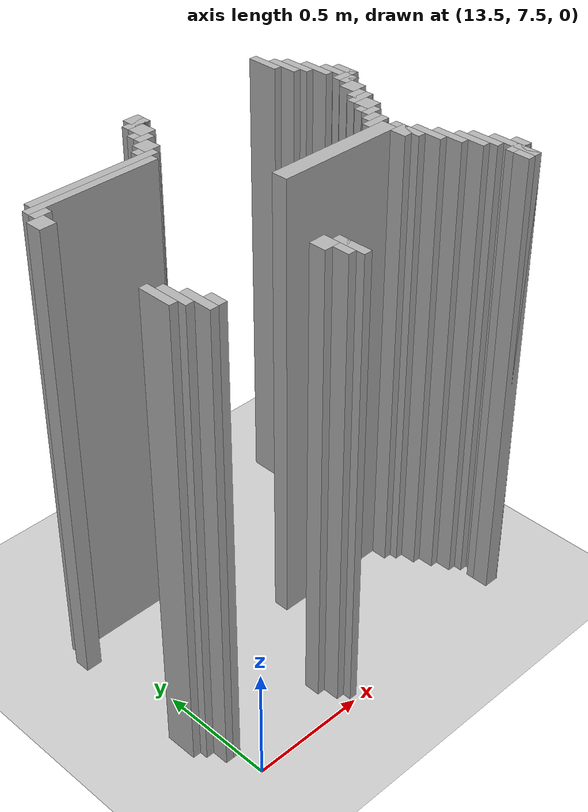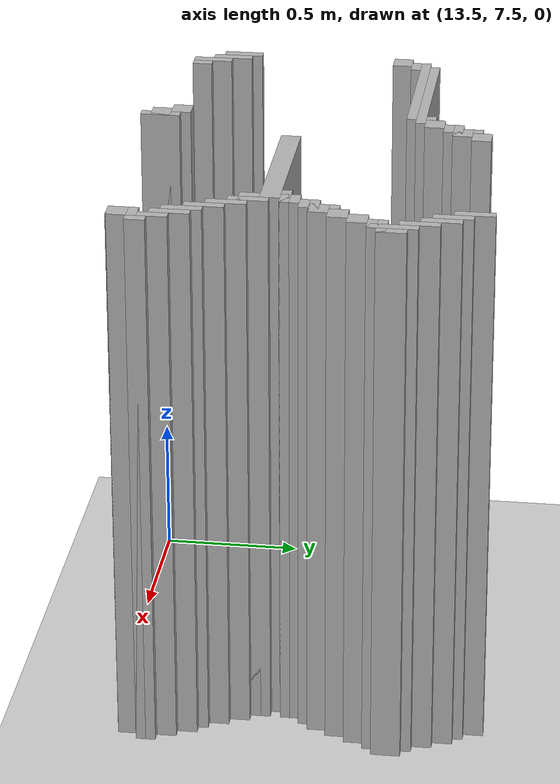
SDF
<sdf version="1.6">
 <world name="slam_world">
  <model name="ground_plane">
   <static>true</static>
   <link name="link">
    <collision name="collision">
     <geometry><plane><normal>0 0 1</normal><size>100 100</size></plane></geometry>
    </collision>
    <visual name="visual">
     <geometry><plane><normal>0 0 1</normal><size>100 100</size></plane></geometry>
     <material>
      <ambient>0.8 0.8 0.8 1</ambient>
      <diffuse>0.8 0.8 0.8 1</diffuse>
      <specular>0.8 0.8 0.8 1</specular>
     </material>
    </visual>
   </link>
  </model>
  <model name="wall_2872">
   <static>true</static>
   <pose>14.773781902552203 8.77030162412993 1.0 0 0 0</pose>
   <link name="link">
    <collision name="collision">
     <geometry><box><size>0.03480278422273782 0.13921113689095127 2.0</size></box></geometry>
    </collision>
    <visual name="visual">
     <geometry><box><size>0.03480278422273782 0.13921113689095127 2.0</size></box></geometry>
     <material><ambient>0.5 0.5 0.5 1</ambient><diffuse>0.7 0.7 0.7 1</diffuse></material>
    </visual>
   </link>
  </model>
  <model name="wall_2886">
   <static>true</static>
   <pose>14.095127610208817 8.735498839907192 1.0 0 0 0</pose>
   <link name="link">
    <collision name="collision">
     <geometry><box><size>0.06960556844547564 0.06960556844547564 2.0</size></box></geometry>
    </collision>
    <visual name="visual">
     <geometry><box><size>0.06960556844547564 0.06960556844547564 2.0</size></box></geometry>
     <material><ambient>0.5 0.5 0.5 1</ambient><diffuse>0.7 0.7 0.7 1</diffuse></material>
    </visual>
   </link>
  </model>
  <model name="wall_2887">
   <static>true</static>
   <pose>14.80858468677494 8.700696055684455 1.0 0 0 0</pose>
   <link name="link">
    <collision name="collision">
     <geometry><box><size>0.03480278422273782 0.13921113689095127 2.0</size></box></geometry>
    </collision>
    <visual name="visual">
     <geometry><box><size>0.03480278422273782 0.13921113689095127 2.0</size></box></geometry>
     <material><ambient>0.5 0.5 0.5 1</ambient><diffuse>0.7 0.7 0.7 1</diffuse></material>
    </visual>
   </link>
  </model>
  <model name="wall_2901">
   <static>true</static>
   <pose>14.077726218097448 8.718097447795824 1.0 0 0 0</pose>
   <link name="link">
    <collision name="collision">
     <geometry><box><size>0.10440835266821345 0.03480278422273782 2.0</size></box></geometry>
    </collision>
    <visual name="visual">
     <geometry><box><size>0.10440835266821345 0.03480278422273782 2.0</size></box></geometry>
     <material><ambient>0.5 0.5 0.5 1</ambient><diffuse>0.7 0.7 0.7 1</diffuse></material>
    </visual>
   </link>
  </model>
  <model name="wall_2902">
   <static>true</static>
   <pose>14.84338747099768 8.665893271461716 1.0 0 0 0</pose>
   <link name="link">
    <collision name="collision">
     <geometry><box><size>0.03480278422273782 0.13921113689095127 2.0</size></box></geometry>
    </collision>
    <visual name="visual">
     <geometry><box><size>0.03480278422273782 0.13921113689095127 2.0</size></box></geometry>
     <material><ambient>0.5 0.5 0.5 1</ambient><diffuse>0.7 0.7 0.7 1</diffuse></material>
    </visual>
   </link>
  </model>
  <model name="wall_2913">
   <static>true</static>
   <pose>14.06032482598608 8.665893271461716 1.0 0 0 0</pose>
   <link name="link">
    <collision name="collision">
     <geometry><box><size>0.06960556844547564 0.06960556844547564 2.0</size></box></geometry>
    </collision>
    <visual name="visual">
     <geometry><box><size>0.06960556844547564 0.06960556844547564 2.0</size></box></geometry>
     <material><ambient>0.5 0.5 0.5 1</ambient><diffuse>0.7 0.7 0.7 1</diffuse></material>
    </visual>
   </link>
  </model>
  <model name="wall_2927">
   <static>true</static>
   <pose>14.042923433874709 8.648491879350347 1.0 0 0 0</pose>
   <link name="link">
    <collision name="collision">
     <geometry><box><size>0.10440835266821345 0.03480278422273782 2.0</size></box></geometry>
    </collision>
    <visual name="visual">
     <geometry><box><size>0.10440835266821345 0.03480278422273782 2.0</size></box></geometry>
     <material><ambient>0.5 0.5 0.5 1</ambient><diffuse>0.7 0.7 0.7 1</diffuse></material>
    </visual>
   </link>
  </model>
  <model name="wall_2928">
   <static>true</static>
   <pose>14.878190255220417 8.596287703016241 1.0 0 0 0</pose>
   <link name="link">
    <collision name="collision">
     <geometry><box><size>0.03480278422273782 0.13921113689095127 2.0</size></box></geometry>
    </collision>
    <visual name="visual">
     <geometry><box><size>0.03480278422273782 0.13921113689095127 2.0</size></box></geometry>
     <material><ambient>0.5 0.5 0.5 1</ambient><diffuse>0.7 0.7 0.7 1</diffuse></material>
    </visual>
   </link>
  </model>
  <model name="wall_2934">
   <static>true</static>
   <pose>14.02552204176334 8.61368909512761 1.0 0 0 0</pose>
   <link name="link">
    <collision name="collision">
     <geometry><box><size>0.06960556844547564 0.03480278422273782 2.0</size></box></geometry>
    </collision>
    <visual name="visual">
     <geometry><box><size>0.06960556844547564 0.03480278422273782 2.0</size></box></geometry>
     <material><ambient>0.5 0.5 0.5 1</ambient><diffuse>0.7 0.7 0.7 1</diffuse></material>
    </visual>
   </link>
  </model>
  <model name="wall_2948">
   <static>true</static>
   <pose>13.990719257540603 8.561484918793504 1.0 0 0 0</pose>
   <link name="link">
    <collision name="collision">
     <geometry><box><size>0.06960556844547564 0.06960556844547564 2.0</size></box></geometry>
    </collision>
    <visual name="visual">
     <geometry><box><size>0.06960556844547564 0.06960556844547564 2.0</size></box></geometry>
     <material><ambient>0.5 0.5 0.5 1</ambient><diffuse>0.7 0.7 0.7 1</diffuse></material>
    </visual>
   </link>
  </model>
  <model name="wall_2949">
   <static>true</static>
   <pose>14.912993039443155 8.509280742459396 1.0 0 0 0</pose>
   <link name="link">
    <collision name="collision">
     <geometry><box><size>0.03480278422273782 0.17401392111368907 2.0</size></box></geometry>
    </collision>
    <visual name="visual">
     <geometry><box><size>0.03480278422273782 0.17401392111368907 2.0</size></box></geometry>
     <material><ambient>0.5 0.5 0.5 1</ambient><diffuse>0.7 0.7 0.7 1</diffuse></material>
    </visual>
   </link>
  </model>
  <model name="wall_2963">
   <static>true</static>
   <pose>13.973317865429234 8.544083526682135 1.0 0 0 0</pose>
   <link name="link">
    <collision name="collision">
     <geometry><box><size>0.10440835266821345 0.03480278422273782 2.0</size></box></geometry>
    </collision>
    <visual name="visual">
     <geometry><box><size>0.10440835266821345 0.03480278422273782 2.0</size></box></geometry>
     <material><ambient>0.5 0.5 0.5 1</ambient><diffuse>0.7 0.7 0.7 1</diffuse></material>
    </visual>
   </link>
  </model>
  <model name="wall_2964">
   <static>true</static>
   <pose>14.947795823665892 8.509280742459396 1.0 0 0 0</pose>
   <link name="link">
    <collision name="collision">
     <geometry><box><size>0.03480278422273782 0.10440835266821345 2.0</size></box></geometry>
    </collision>
    <visual name="visual">
     <geometry><box><size>0.03480278422273782 0.10440835266821345 2.0</size></box></geometry>
     <material><ambient>0.5 0.5 0.5 1</ambient><diffuse>0.7 0.7 0.7 1</diffuse></material>
    </visual>
   </link>
  </model>
  <model name="wall_2974">
   <static>true</static>
   <pose>13.7122969837587 8.509280742459396 1.0 0 0 0</pose>
   <link name="link">
    <collision name="collision">
     <geometry><box><size>0.5568445475638051 0.03480278422273782 2.0</size></box></geometry>
    </collision>
    <visual name="visual">
     <geometry><box><size>0.5568445475638051 0.03480278422273782 2.0</size></box></geometry>
     <material><ambient>0.5 0.5 0.5 1</ambient><diffuse>0.7 0.7 0.7 1</diffuse></material>
    </visual>
   </link>
  </model>
  <model name="wall_2984">
   <static>true</static>
   <pose>13.677494199535962 8.474477958236658 1.0 0 0 0</pose>
   <link name="link">
    <collision name="collision">
     <geometry><box><size>0.5568445475638051 0.03480278422273782 2.0</size></box></geometry>
    </collision>
    <visual name="visual">
     <geometry><box><size>0.5568445475638051 0.03480278422273782 2.0</size></box></geometry>
     <material><ambient>0.5 0.5 0.5 1</ambient><diffuse>0.7 0.7 0.7 1</diffuse></material>
    </visual>
   </link>
  </model>
  <model name="wall_2985">
   <static>true</static>
   <pose>14.912993039443155 8.474477958236658 1.0 0 0 0</pose>
   <link name="link">
    <collision name="collision">
     <geometry><box><size>0.10440835266821345 0.03480278422273782 2.0</size></box></geometry>
    </collision>
    <visual name="visual">
     <geometry><box><size>0.10440835266821345 0.03480278422273782 2.0</size></box></geometry>
     <material><ambient>0.5 0.5 0.5 1</ambient><diffuse>0.7 0.7 0.7 1</diffuse></material>
    </visual>
   </link>
  </model>
  <model name="wall_2997">
   <static>true</static>
   <pose>13.433874709976797 8.43967517401392 1.0 0 0 0</pose>
   <link name="link">
    <collision name="collision">
     <geometry><box><size>0.06960556844547564 0.03480278422273782 2.0</size></box></geometry>
    </collision>
    <visual name="visual">
     <geometry><box><size>0.06960556844547564 0.03480278422273782 2.0</size></box></geometry>
     <material><ambient>0.5 0.5 0.5 1</ambient><diffuse>0.7 0.7 0.7 1</diffuse></material>
    </visual>
   </link>
  </model>
  <model name="wall_2998">
   <static>true</static>
   <pose>14.895591647331786 8.43967517401392 1.0 0 0 0</pose>
   <link name="link">
    <collision name="collision">
     <geometry><box><size>0.06960556844547564 0.03480278422273782 2.0</size></box></geometry>
    </collision>
    <visual name="visual">
     <geometry><box><size>0.06960556844547564 0.03480278422273782 2.0</size></box></geometry>
     <material><ambient>0.5 0.5 0.5 1</ambient><diffuse>0.7 0.7 0.7 1</diffuse></material>
    </visual>
   </link>
  </model>
  <model name="wall_3010">
   <static>true</static>
   <pose>13.39907192575406 8.387470997679815 1.0 0 0 0</pose>
   <link name="link">
    <collision name="collision">
     <geometry><box><size>0.06960556844547564 0.06960556844547564 2.0</size></box></geometry>
    </collision>
    <visual name="visual">
     <geometry><box><size>0.06960556844547564 0.06960556844547564 2.0</size></box></geometry>
     <material><ambient>0.5 0.5 0.5 1</ambient><diffuse>0.7 0.7 0.7 1</diffuse></material>
    </visual>
   </link>
  </model>
  <model name="wall_3011">
   <static>true</static>
   <pose>14.860788863109049 8.387470997679815 1.0 0 0 0</pose>
   <link name="link">
    <collision name="collision">
     <geometry><box><size>0.06960556844547564 0.06960556844547564 2.0</size></box></geometry>
    </collision>
    <visual name="visual">
     <geometry><box><size>0.06960556844547564 0.06960556844547564 2.0</size></box></geometry>
     <material><ambient>0.5 0.5 0.5 1</ambient><diffuse>0.7 0.7 0.7 1</diffuse></material>
    </visual>
   </link>
  </model>
  <model name="wall_3024">
   <static>true</static>
   <pose>14.825986078886311 8.317865429234338 1.0 0 0 0</pose>
   <link name="link">
    <collision name="collision">
     <geometry><box><size>0.06960556844547564 0.06960556844547564 2.0</size></box></geometry>
    </collision>
    <visual name="visual">
     <geometry><box><size>0.06960556844547564 0.06960556844547564 2.0</size></box></geometry>
     <material><ambient>0.5 0.5 0.5 1</ambient><diffuse>0.7 0.7 0.7 1</diffuse></material>
    </visual>
   </link>
  </model>
  <model name="wall_3037">
   <static>true</static>
   <pose>14.80858468677494 8.30046403712297 1.0 0 0 0</pose>
   <link name="link">
    <collision name="collision">
     <geometry><box><size>0.10440835266821345 0.03480278422273782 2.0</size></box></geometry>
    </collision>
    <visual name="visual">
     <geometry><box><size>0.10440835266821345 0.03480278422273782 2.0</size></box></geometry>
     <material><ambient>0.5 0.5 0.5 1</ambient><diffuse>0.7 0.7 0.7 1</diffuse></material>
    </visual>
   </link>
  </model>
  <model name="wall_3048">
   <static>true</static>
   <pose>14.791183294663572 8.248259860788863 1.0 0 0 0</pose>
   <link name="link">
    <collision name="collision">
     <geometry><box><size>0.06960556844547564 0.06960556844547564 2.0</size></box></geometry>
    </collision>
    <visual name="visual">
     <geometry><box><size>0.06960556844547564 0.06960556844547564 2.0</size></box></geometry>
     <material><ambient>0.5 0.5 0.5 1</ambient><diffuse>0.7 0.7 0.7 1</diffuse></material>
    </visual>
   </link>
  </model>
  <model name="wall_3061">
   <static>true</static>
   <pose>14.773781902552203 8.230858468677495 1.0 0 0 0</pose>
   <link name="link">
    <collision name="collision">
     <geometry><box><size>0.10440835266821345 0.03480278422273782 2.0</size></box></geometry>
    </collision>
    <visual name="visual">
     <geometry><box><size>0.10440835266821345 0.03480278422273782 2.0</size></box></geometry>
     <material><ambient>0.5 0.5 0.5 1</ambient><diffuse>0.7 0.7 0.7 1</diffuse></material>
    </visual>
   </link>
  </model>
  <model name="wall_3070">
   <static>true</static>
   <pose>14.756380510440835 8.196055684454755 1.0 0 0 0</pose>
   <link name="link">
    <collision name="collision">
     <geometry><box><size>0.06960556844547564 0.03480278422273782 2.0</size></box></geometry>
    </collision>
    <visual name="visual">
     <geometry><box><size>0.06960556844547564 0.03480278422273782 2.0</size></box></geometry>
     <material><ambient>0.5 0.5 0.5 1</ambient><diffuse>0.7 0.7 0.7 1</diffuse></material>
    </visual>
   </link>
  </model>
  <model name="wall_3083">
   <static>true</static>
   <pose>14.721577726218097 8.14385150812065 1.0 0 0 0</pose>
   <link name="link">
    <collision name="collision">
     <geometry><box><size>0.06960556844547564 0.06960556844547564 2.0</size></box></geometry>
    </collision>
    <visual name="visual">
     <geometry><box><size>0.06960556844547564 0.06960556844547564 2.0</size></box></geometry>
     <material><ambient>0.5 0.5 0.5 1</ambient><diffuse>0.7 0.7 0.7 1</diffuse></material>
    </visual>
   </link>
  </model>
  <model name="wall_3095">
   <static>true</static>
   <pose>14.704176334106728 8.12645011600928 1.0 0 0 0</pose>
   <link name="link">
    <collision name="collision">
     <geometry><box><size>0.10440835266821345 0.03480278422273782 2.0</size></box></geometry>
    </collision>
    <visual name="visual">
     <geometry><box><size>0.10440835266821345 0.03480278422273782 2.0</size></box></geometry>
     <material><ambient>0.5 0.5 0.5 1</ambient><diffuse>0.7 0.7 0.7 1</diffuse></material>
    </visual>
   </link>
  </model>
  <model name="wall_3106">
   <static>true</static>
   <pose>14.443155452436194 8.074245939675174 1.0 0 0 0</pose>
   <link name="link">
    <collision name="collision">
     <geometry><box><size>0.5568445475638051 0.06960556844547564 2.0</size></box></geometry>
    </collision>
    <visual name="visual">
     <geometry><box><size>0.5568445475638051 0.06960556844547564 2.0</size></box></geometry>
     <material><ambient>0.5 0.5 0.5 1</ambient><diffuse>0.7 0.7 0.7 1</diffuse></material>
    </visual>
   </link>
  </model>
  <model name="wall_3113">
   <static>true</static>
   <pose>14.738979118329466 8.004640371229698 1.0 0 0 0</pose>
   <link name="link">
    <collision name="collision">
     <geometry><box><size>0.03480278422273782 0.13921113689095127 2.0</size></box></geometry>
    </collision>
    <visual name="visual">
     <geometry><box><size>0.03480278422273782 0.13921113689095127 2.0</size></box></geometry>
     <material><ambient>0.5 0.5 0.5 1</ambient><diffuse>0.7 0.7 0.7 1</diffuse></material>
    </visual>
   </link>
  </model>
  <model name="wall_3122">
   <static>true</static>
   <pose>14.721577726218097 8.004640371229698 1.0 0 0 0</pose>
   <link name="link">
    <collision name="collision">
     <geometry><box><size>0.06960556844547564 0.06960556844547564 2.0</size></box></geometry>
    </collision>
    <visual name="visual">
     <geometry><box><size>0.06960556844547564 0.06960556844547564 2.0</size></box></geometry>
     <material><ambient>0.5 0.5 0.5 1</ambient><diffuse>0.7 0.7 0.7 1</diffuse></material>
    </visual>
   </link>
  </model>
  <model name="wall_3131">
   <static>true</static>
   <pose>14.773781902552203 7.935034802784222 1.0 0 0 0</pose>
   <link name="link">
    <collision name="collision">
     <geometry><box><size>0.03480278422273782 0.13921113689095127 2.0</size></box></geometry>
    </collision>
    <visual name="visual">
     <geometry><box><size>0.03480278422273782 0.13921113689095127 2.0</size></box></geometry>
     <material><ambient>0.5 0.5 0.5 1</ambient><diffuse>0.7 0.7 0.7 1</diffuse></material>
    </visual>
   </link>
  </model>
  <model name="wall_3145">
   <static>true</static>
   <pose>14.80858468677494 7.865429234338746 1.0 0 0 0</pose>
   <link name="link">
    <collision name="collision">
     <geometry><box><size>0.03480278422273782 0.13921113689095127 2.0</size></box></geometry>
    </collision>
    <visual name="visual">
     <geometry><box><size>0.03480278422273782 0.13921113689095127 2.0</size></box></geometry>
     <material><ambient>0.5 0.5 0.5 1</ambient><diffuse>0.7 0.7 0.7 1</diffuse></material>
    </visual>
   </link>
  </model>
  <model name="wall_3153">
   <static>true</static>
   <pose>13.38167053364269 7.795823665893272 1.0 0 0 0</pose>
   <link name="link">
    <collision name="collision">
     <geometry><box><size>0.03480278422273782 0.13921113689095127 2.0</size></box></geometry>
    </collision>
    <visual name="visual">
     <geometry><box><size>0.03480278422273782 0.13921113689095127 2.0</size></box></geometry>
     <material><ambient>0.5 0.5 0.5 1</ambient><diffuse>0.7 0.7 0.7 1</diffuse></material>
    </visual>
   </link>
  </model>
  <model name="wall_3154">
   <static>true</static>
   <pose>14.84338747099768 7.795823665893272 1.0 0 0 0</pose>
   <link name="link">
    <collision name="collision">
     <geometry><box><size>0.03480278422273782 0.13921113689095127 2.0</size></box></geometry>
    </collision>
    <visual name="visual">
     <geometry><box><size>0.03480278422273782 0.13921113689095127 2.0</size></box></geometry>
     <material><ambient>0.5 0.5 0.5 1</ambient><diffuse>0.7 0.7 0.7 1</diffuse></material>
    </visual>
   </link>
  </model>
  <model name="wall_3162">
   <static>true</static>
   <pose>13.416473317865428 7.761020881670533 1.0 0 0 0</pose>
   <link name="link">
    <collision name="collision">
     <geometry><box><size>0.03480278422273782 0.13921113689095127 2.0</size></box></geometry>
    </collision>
    <visual name="visual">
     <geometry><box><size>0.03480278422273782 0.13921113689095127 2.0</size></box></geometry>
     <material><ambient>0.5 0.5 0.5 1</ambient><diffuse>0.7 0.7 0.7 1</diffuse></material>
    </visual>
   </link>
  </model>
  <model name="wall_3163">
   <static>true</static>
   <pose>14.878190255220417 7.761020881670533 1.0 0 0 0</pose>
   <link name="link">
    <collision name="collision">
     <geometry><box><size>0.03480278422273782 0.13921113689095127 2.0</size></box></geometry>
    </collision>
    <visual name="visual">
     <geometry><box><size>0.03480278422273782 0.13921113689095127 2.0</size></box></geometry>
     <material><ambient>0.5 0.5 0.5 1</ambient><diffuse>0.7 0.7 0.7 1</diffuse></material>
    </visual>
   </link>
  </model>
  <model name="wall_3174">
   <static>true</static>
   <pose>13.451276102088167 7.691415313225058 1.0 0 0 0</pose>
   <link name="link">
    <collision name="collision">
     <geometry><box><size>0.03480278422273782 0.13921113689095127 2.0</size></box></geometry>
    </collision>
    <visual name="visual">
     <geometry><box><size>0.03480278422273782 0.13921113689095127 2.0</size></box></geometry>
     <material><ambient>0.5 0.5 0.5 1</ambient><diffuse>0.7 0.7 0.7 1</diffuse></material>
    </visual>
   </link>
  </model>
  <model name="wall_3175">
   <static>true</static>
   <pose>14.912993039443155 7.65661252900232 1.0 0 0 0</pose>
   <link name="link">
    <collision name="collision">
     <geometry><box><size>0.03480278422273782 0.2088167053364269 2.0</size></box></geometry>
    </collision>
    <visual name="visual">
     <geometry><box><size>0.03480278422273782 0.2088167053364269 2.0</size></box></geometry>
     <material><ambient>0.5 0.5 0.5 1</ambient><diffuse>0.7 0.7 0.7 1</diffuse></material>
    </visual>
   </link>
  </model>
  <model name="wall_3190">
   <static>true</static>
   <pose>13.486078886310905 7.65661252900232 1.0 0 0 0</pose>
   <link name="link">
    <collision name="collision">
     <geometry><box><size>0.03480278422273782 0.06960556844547564 2.0</size></box></geometry>
    </collision>
    <visual name="visual">
     <geometry><box><size>0.03480278422273782 0.06960556844547564 2.0</size></box></geometry>
     <material><ambient>0.5 0.5 0.5 1</ambient><diffuse>0.7 0.7 0.7 1</diffuse></material>
    </visual>
   </link>
  </model>
  <model name="wall_3191">
   <static>true</static>
   <pose>13.955916473317865 7.65661252900232 1.0 0 0 0</pose>
   <link name="link">
    <collision name="collision">
     <geometry><box><size>0.06960556844547564 0.06960556844547564 2.0</size></box></geometry>
    </collision>
    <visual name="visual">
     <geometry><box><size>0.06960556844547564 0.06960556844547564 2.0</size></box></geometry>
     <material><ambient>0.5 0.5 0.5 1</ambient><diffuse>0.7 0.7 0.7 1</diffuse></material>
    </visual>
   </link>
  </model>
  <model name="wall_3192">
   <static>true</static>
   <pose>14.947795823665892 7.65661252900232 1.0 0 0 0</pose>
   <link name="link">
    <collision name="collision">
     <geometry><box><size>0.03480278422273782 0.06960556844547564 2.0</size></box></geometry>
    </collision>
    <visual name="visual">
     <geometry><box><size>0.03480278422273782 0.06960556844547564 2.0</size></box></geometry>
     <material><ambient>0.5 0.5 0.5 1</ambient><diffuse>0.7 0.7 0.7 1</diffuse></material>
    </visual>
   </link>
  </model>
  <model name="wall_3202">
   <static>true</static>
   <pose>14.008120649651971 7.587006960556844 1.0 0 0 0</pose>
   <link name="link">
    <collision name="collision">
     <geometry><box><size>0.03480278422273782 0.13921113689095127 2.0</size></box></geometry>
    </collision>
    <visual name="visual">
     <geometry><box><size>0.03480278422273782 0.13921113689095127 2.0</size></box></geometry>
     <material><ambient>0.5 0.5 0.5 1</ambient><diffuse>0.7 0.7 0.7 1</diffuse></material>
    </visual>
   </link>
  </model>
  <model name="wall_3203">
   <static>true</static>
   <pose>14.912993039443155 7.6392111368909505 1.0 0 0 0</pose>
   <link name="link">
    <collision name="collision">
     <geometry><box><size>0.10440835266821345 0.03480278422273782 2.0</size></box></geometry>
    </collision>
    <visual name="visual">
     <geometry><box><size>0.10440835266821345 0.03480278422273782 2.0</size></box></geometry>
     <material><ambient>0.5 0.5 0.5 1</ambient><diffuse>0.7 0.7 0.7 1</diffuse></material>
    </visual>
   </link>
  </model>
  <model name="wall_3215">
   <static>true</static>
   <pose>13.990719257540603 7.587006960556844 1.0 0 0 0</pose>
   <link name="link">
    <collision name="collision">
     <geometry><box><size>0.06960556844547564 0.06960556844547564 2.0</size></box></geometry>
    </collision>
    <visual name="visual">
     <geometry><box><size>0.06960556844547564 0.06960556844547564 2.0</size></box></geometry>
     <material><ambient>0.5 0.5 0.5 1</ambient><diffuse>0.7 0.7 0.7 1</diffuse></material>
    </visual>
   </link>
  </model>
  <model name="wall_3216">
   <static>true</static>
   <pose>14.895591647331786 7.587006960556844 1.0 0 0 0</pose>
   <link name="link">
    <collision name="collision">
     <geometry><box><size>0.06960556844547564 0.06960556844547564 2.0</size></box></geometry>
    </collision>
    <visual name="visual">
     <geometry><box><size>0.06960556844547564 0.06960556844547564 2.0</size></box></geometry>
     <material><ambient>0.5 0.5 0.5 1</ambient><diffuse>0.7 0.7 0.7 1</diffuse></material>
    </visual>
   </link>
  </model>
 </world>
</sdf>
